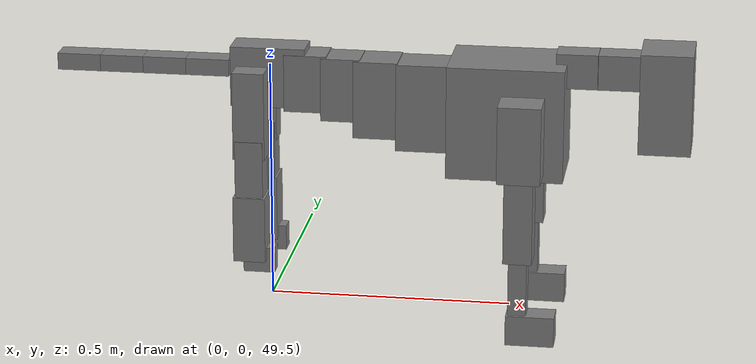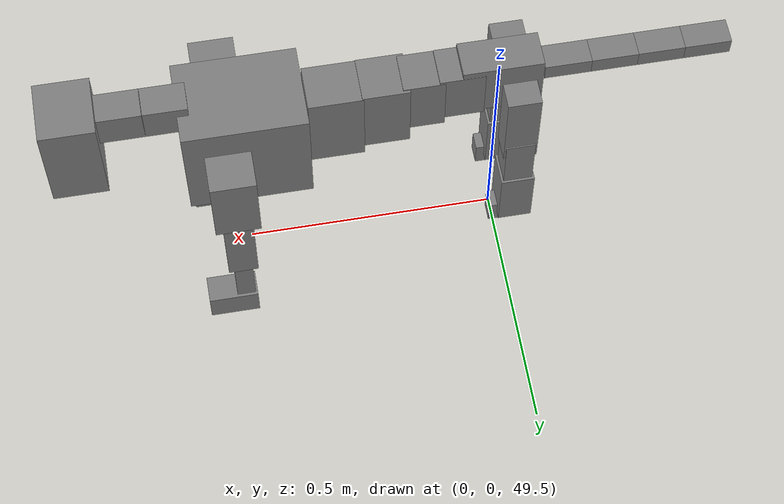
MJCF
<mujoco model="dog">

    <default>
        <joint armature="0.02" stiffness="1" damping="0.2" limited="true"/>
        <geom condim="3" friction="1 0.05 0.05" margin="0.01"/>
        <motor ctrllimited="true" ctrlrange="-1.0 1.0" forcelimited="true" gear="50"/>
    </default>

    <compiler inertiafromgeom="true" angle="radian"/>

    <option timestep="0.016" iterations="50" tolerance="1e-10" solver="Newton" jacobian="dense" cone="pyramidal"/>

    <size nconmax="20000" njmax="60000" nstack="5000000"/>
    <visual>
        <map force="0.1" zfar="30"/>
        <rgba haze="0.15 0.25 0.35 1"/>
        <quality shadowsize="2048"/>
        <global offwidth="800" offheight="800"/>
    </visual>

    <asset>
        <texture type="skybox" builtin="gradient" rgb1="0.3 0.5 0.7" rgb2="0 0 0" width="512" height="512"/>
        <texture name="texplane" type="2d" builtin="checker" rgb1=".2 .3 .4" rgb2=".1 0.15 0.2" width="512" height="512"
                 mark="cross" markrgb=".8 .8 .8"/>
        <texture name="texgeom" type="cube" builtin="flat" mark="cross" width="127" height="1278" rgb1="0.8 0.6 0.4"
                 rgb2="0.8 0.6 0.4" markrgb="1 1 1" random="0.01"/>

        <material name="matplane" reflectance="0.3" texture="texplane" texrepeat="1 1" texuniform="true"/>
        <material name="matgeom" texture="texgeom" texuniform="true" rgba="0.8 0.6 .4 1"/>
    </asset>

    <worldbody>
        <geom name="floor" pos="0 0 0" size="0 0 .25" type="plane" material="matplane" condim="3"/>

        <light directional="false" diffuse=".2 .2 .2" specular="0 0 0" pos="0 0 5" dir="0 0 -1" castshadow="false"/>
        <light mode="targetbodycom" target="torso" directional="false" diffuse=".8 .8 .8" specular="0.3 0.3 0.3"
               pos="0 0 4.0" dir="0 0 -1"/>

        <body name="root" pos="0 0 50">
            <freejoint name="root_1"/>
            <geom type="box" pos="0 0 -0.02" size="0.0774  0.0358  0.063" density="2030"/>

            <body name="spine1" pos="0.054 0 0">
                <joint name="spine1_y" axis="0 1 0" range="0 0.7" limited="true"/>
                <geom type="box" pos="0.02375 0 -0.03" size="0.04375  0.0375  0.05985" density="2030"/>

                <body name="spine2" pos="0.0612 0 0">
                    <joint name="spine2_y" axis="0 1 0" range="-0.15 0.15" limited="true"/>
                    <geom type="box" pos="0.03555  0  -0.04" size="0.04055  0.039  0.06615" density="2030"/>

                    <body name="spine3" pos="0.0730 0 0">
                        <joint name="spine3_y" axis="0 1 0" range="-0.15 0.15" limited="true"/>
                        <geom type="box" pos="0.03555  0  -0.057" size="0.04555  0.0445  0.081" density="2030"/>

                        <body name="spine4" pos="0.0780 0 0">
                            <joint name="spine4_y" axis="0 1 0" range="-0.15 0.15" limited="true"/>
                            <geom type="box" pos="0.05265  0  -0.07" size="0.05265  0.045  0.09135" density="2030"/>

                            <body name="torso" pos="0.1082 0 0">
                                <joint name="torso_y" axis="0 1 0" range="-0.15 0.15" limited="true"/>
                                <geom type="box" pos="0.11925  0  -0.085" size="0.11925  0.085  0.11745"
                                      density="2030"/>

                                <body name="neck1" pos="0.2160  0   0.0180">
                                    <joint name="neck1_y" axis="0 1 0" range="-1.2  -1" limited="true"/>
                                    <geom type="box" pos="0.0423  0  0" size="0.0423  0.03  0.036" density="2325"/>

                                    <body name="neck2" pos="0.0853  0  0">
                                        <joint name="neck2_y" axis="0 1 0" range="0.1  0" limited="true"/>
                                        <geom type="box" pos="0.0423  0  0" size="0.0423  0.03  0.036" density="2325"/>

                                        <body name="head" pos="0.0853  0  0">
                                            <joint name="head_y" axis="0 1 0" range="-0.3  -0.2" limited="true"/>
                                            <geom type="box" pos="0.0531  0  -0.055" size="0.0531  0.06  0.1044"
                                                  density="4030"/>

                                        </body>
                                    </body>
                                </body>

                                <body name="front_shoulder" pos="0.156  0   -0.0480">
                                    <joint name="front_shoulder_y" axis="0 1 0" range="-1 1.5" limited="true"/>
                                    <geom type="box" pos="0 0.13 -0.0537" size="0.0438  0.0375  0.0804" density="1158"/>
                                    <geom type="box" pos="0 -0.13 -0.0537" size="0.0438  0.0375  0.0804"
                                          density="1158"/>

                                    <body name="front_elbow" pos="0  0  -0.1075">
                                        <joint name="front_elbow_y" axis="0 1 0" range="-2 0" limited="true"/>
                                        <geom type="box" pos="0 0.13 -0.0989" size="0.0293  0.0300  0.0989"
                                              density="1081"/>
                                        <geom type="box" pos="0 -0.13 -0.0989" size="0.0293  0.0300  0.0989"
                                              density="1081"/>

                                        <body name="front_wrist" pos="0  0  -0.1977">
                                            <joint name="front_wrist_y" axis="0 1 0" range="-0.2 0" limited="true"/>
                                            <geom type="box" pos="0 0.13 -0.0644" size="0.0187  0.0208  0.0776"
                                                  density="1664"/>
                                            <geom type="box" pos="0 -0.13 -0.0644" size="0.0187  0.0208  0.0776"
                                                  density="1664"/>

                                            <body name="front_finger_end" pos="0  0  -0.1288">
                                                <joint name="front_finger_y" axis="0 1 0" range="-0.4 1"
                                                       limited="true"/>
                                                <geom type="box" pos="0.0271  0.13  -0.0164"
                                                      size="0.0496  0.0271  0.0314" density="1515"/>
                                                <geom type="box" pos="0.0271  -0.13  -0.0164"
                                                      size="0.0496  0.0271  0.0314" density="1515"/>

                                            </body>

                                        </body>
                                    </body>
                                </body>

                            </body>
                        </body>
                    </body>
                </body>
            </body>

            <body name="back_hip" pos="-0.03 0 -0.018">
                <joint name="back_hip_y" axis="0 1 0" range="-1.5 0.3" limited="true"/>
                <geom type="box" pos="0 0.07 -0.0692" size="0.0326  0.0256  0.0920" density="1154"/>
                <geom type="box" pos="0 -0.07 -0.0692" size="0.0326  0.0256  0.0920" density="1154"/>

                <body name="back_knee" pos="0  0  -0.1383">
                    <joint name="back_knee_y" axis="0 1 0" range="0 2.8" limited="true"/>
                    <geom type="box" pos="0 0.07 -0.0575" size="0.0287  0.0282  0.0730" density="1227"/>
                    <geom type="box" pos="0 -0.07 -0.0575" size="0.0287  0.0282  0.0730" density="1227"/>

                    <body name="back_ankle" pos="0  0  -0.1149">
                        <joint name="back_ankle_y" axis="0 1 0" range="-2.2 0" limited="true"/>
                        <geom type="box" pos="0 0.07 -0.0577" size="0.0333  0.0333  0.0690" density="1284"/>
                        <geom type="box" pos="0 -0.07 -0.0577" size="0.0333  0.0333  0.0690" density="1284"/>

                        <body name="back_toe_end" pos="0  0  -0.1154">
                            <joint name="back_toe_y" axis="0 1 0" range="-0.4 1" limited="true"/>
                            <geom type="box" pos="0.0176  0.07  -0.0114" size="0.0324  0.0176  0.0264" density="1515"/>
                            <geom type="box" pos="0.0176  -0.07  -0.0114" size="0.0324  0.0176  0.0264" density="1515"/>

                        </body>
                    </body>
                </body>
            </body>

            <body name="tail1" pos="-0.074 0 -0.006">
                <joint name="tail1_y" axis="0 1 0" range="-0.2 0.2" limited="true"/>
                <geom type="box" pos="-0.0536  0  0" size="0.045  0.025  0.0175" density="1587"/>

                <body name="tail2" pos="-0.09 0 0">
                    <joint name="tail2_y" axis="0 1 0" range="-0.2 0.2" limited="true"/>
                    <geom type="box" pos="-0.0536  0  0" size="0.045  0.025  0.0175" density="1587"/>

                    <body name="tail3" pos="-0.09 0 0">
                        <joint name="tail3_y" axis="0 1 0" range="-0.2 0.2" limited="true"/>
                        <geom type="box" pos="-0.0536  0  0" size="0.045  0.025  0.0175" density="1587"/>

                        <body name="tail4" pos="-0.09 0 0">
                            <joint name="tail4_y" axis="0 1 0" range="-0.2 0.2" limited="true"/>
                            <geom type="box" pos="-0.0536  0  0" size="0.045  0.025  0.0175" density="1587"/>

                        </body>
                    </body>
                </body>
            </body>
        </body>
    </worldbody>

    <actuator>
        <motor joint="spine1_y" forcerange="-150 150     "/>
        <motor joint="spine2_y" forcerange="-150 150     "/>
        <motor joint="spine3_y" forcerange="-150 150     "/>
        <motor joint="spine4_y" forcerange="-150 150     "/>
        <motor joint="torso_y" forcerange="-150 150     "/>
        <motor joint="neck1_y" forcerange="-100 100       "/>
        <motor joint="neck2_y" forcerange="-100 100       "/>
        <motor joint="head_y" forcerange="-150 150       "/>
        <motor joint="front_shoulder_y" forcerange="-187.87 161.97"/>
        <motor joint="front_elbow_y" forcerange="-183.07 135.13"/>
        <motor joint="front_wrist_y" forcerange="-82.76 83.65"/>
        <motor joint="front_finger_y" forcerange="-72.19 32.15"/>
        <motor joint="back_hip_y" forcerange="-201.15 340.16"/>
        <motor joint="back_knee_y" forcerange="-310.84 299.95"/>
        <motor joint="back_angle_y" forcerange="-215.21 217.10"/>
        <motor joint="back_toe_y" forcerange="-32.58 28.62"/>
        <motor joint="tail1_y" forcerange="-50 50     "/>
        <motor joint="tail2_y" forcerange="-50 50     "/>
        <motor joint="tail3_y" forcerange="-50 50     "/>
        <motor joint="tail4_y" forcerange="-50 50     "/>
    </actuator>
</mujoco>
